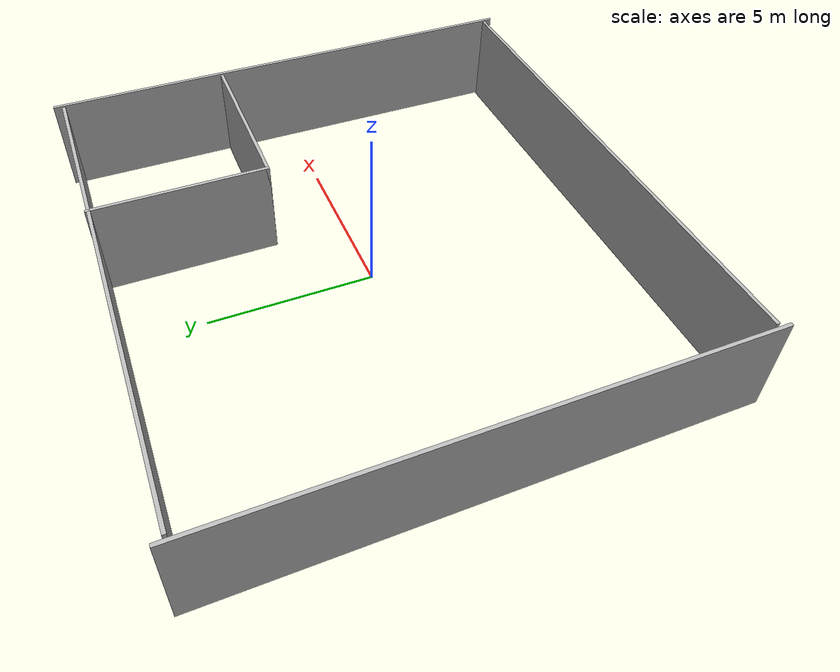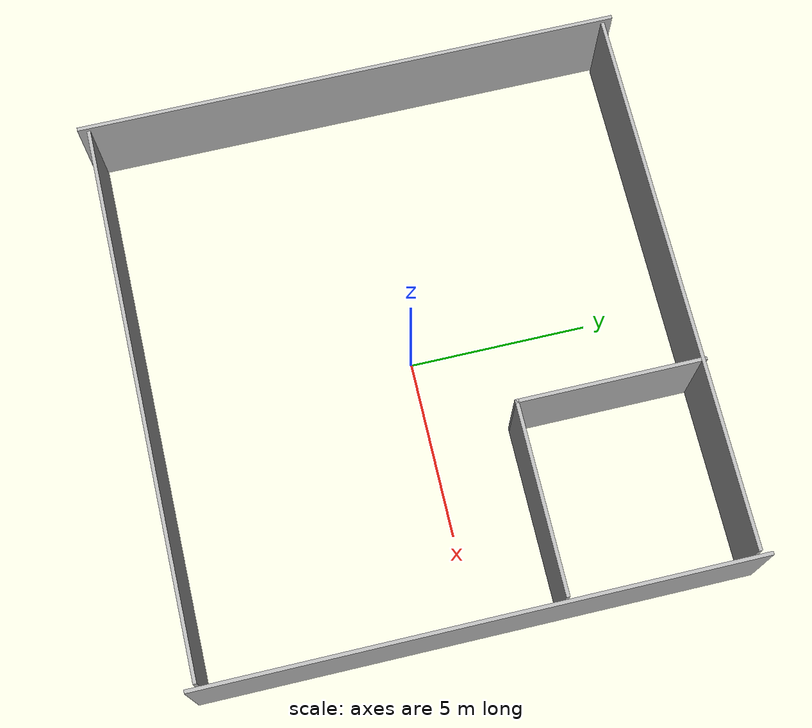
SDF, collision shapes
<?xml version="1.0" ?>
<sdf version="1.6">
  <model name="aws_robomaker_retail_RetailShopWall_01_simple">
    <link name="link">
      <inertial>
        <mass>1</mass>
      </inertial>
      <collision name="collision">
        <pose>7.8 0.0 1.5 0 0 0 </pose>
        <geometry>
          <box>
            <size>0.1 15.2 3.0</size>
          </box>
        </geometry>
      </collision>
      <collision name="collision2">
        <pose>-7.8 0.0 1.5 0 0 0 </pose>
        <geometry>
          <box>
            <size>0.1 15.2 3.0</size>
          </box>
        </geometry>
      </collision>
      <collision name="collision3">
        <pose>2.45 4.8 1.5 0 0 0 </pose>
        <geometry>
          <box>
            <size>0.1 5.2 3.0</size>
          </box>
        </geometry>
      </collision>
      <collision name="collision4">
        <pose>0.0 7.30 1.5 0 0 0 </pose>
        <geometry>
          <box>
            <size>15.35 0.1 3.0</size>
          </box>
        </geometry>
      </collision>
      <collision name="collision5">
        <pose>0.0 -7.30 1.5 0 0 0 </pose>
        <geometry>
          <box>
            <size>15.35 0.1 3.0</size>
          </box>
        </geometry>
      </collision>
      <collision name="collision6">
        <pose>5.05 2.25 1.5 0 0 0 </pose>
        <geometry>
          <box>
            <size>5.3 0.1 3.0</size>
          </box>
        </geometry>
      </collision>
      <visual name="visual">
	    <geometry>
          <mesh>
            <uri>file://models/aws_robomaker_retail_RetailShopWall_01/meshes/aws_RetailShopWall_01_visual.DAE</uri>
          </mesh>
        </geometry>
        <meta>
          <layer>2</layer>
        </meta>
      </visual>
    </link>
	<static>1</static>
  </model>
</sdf>
